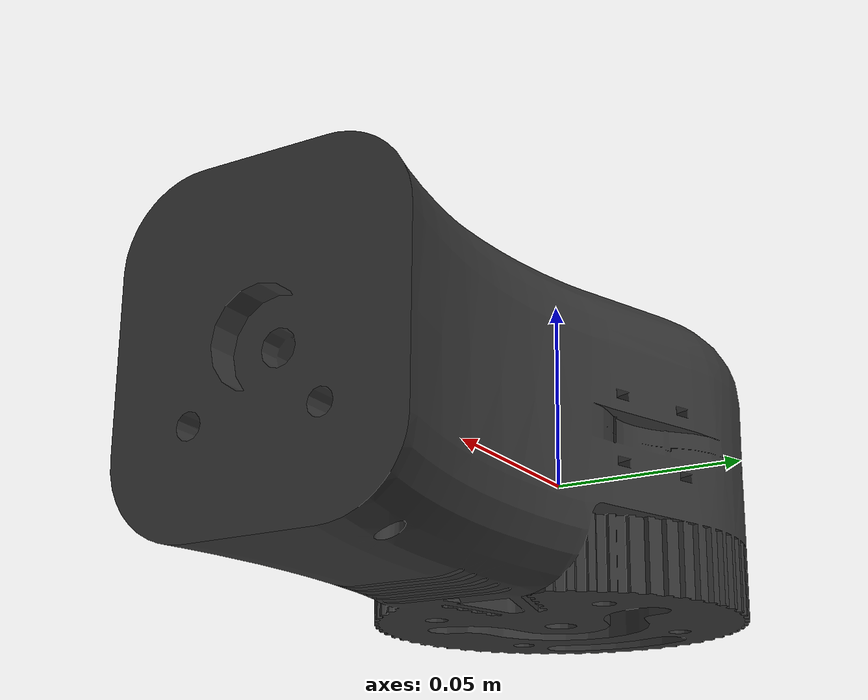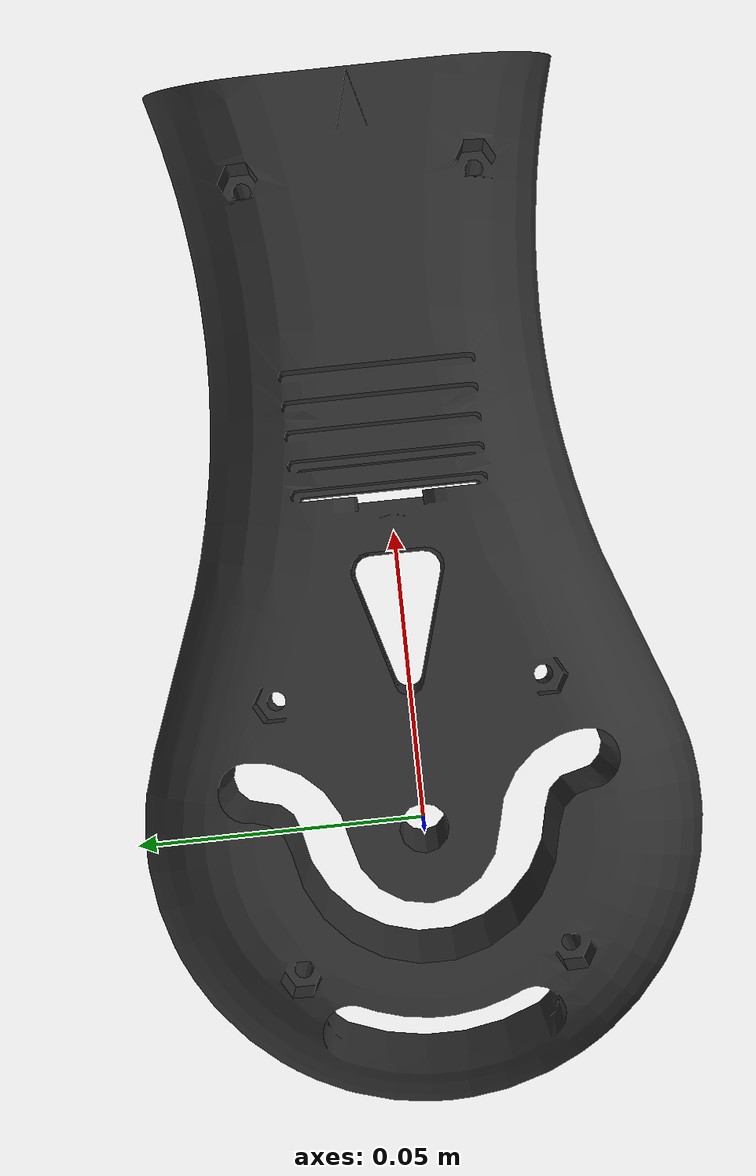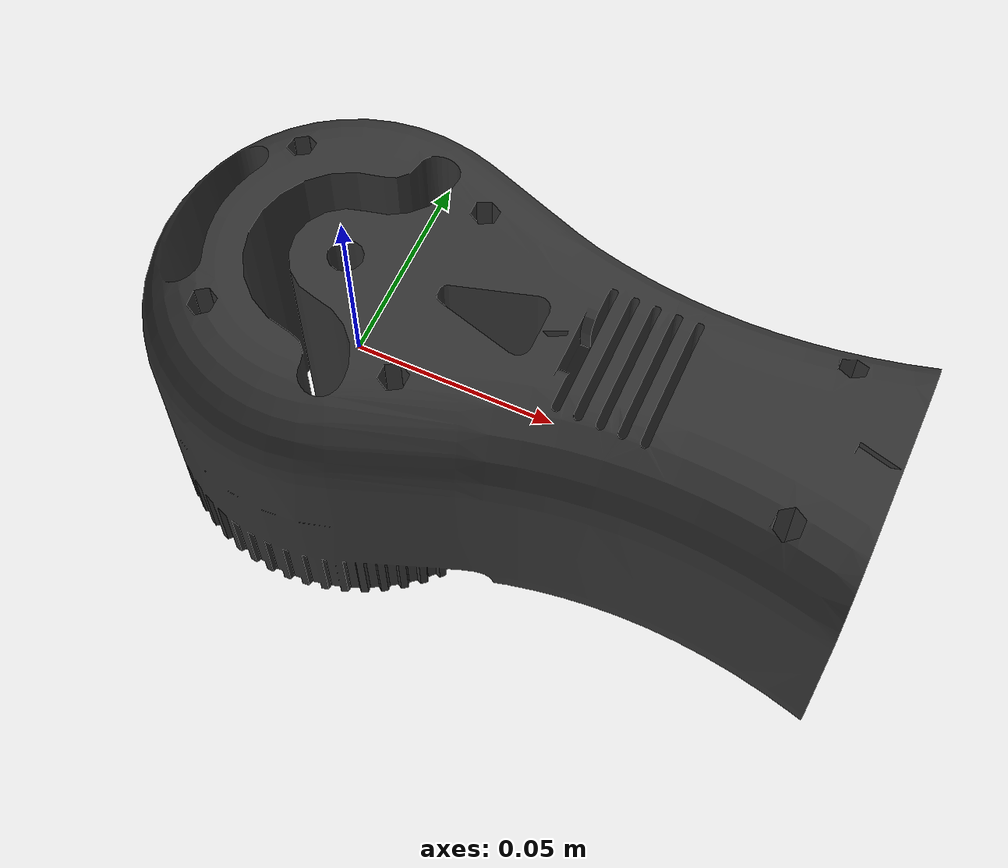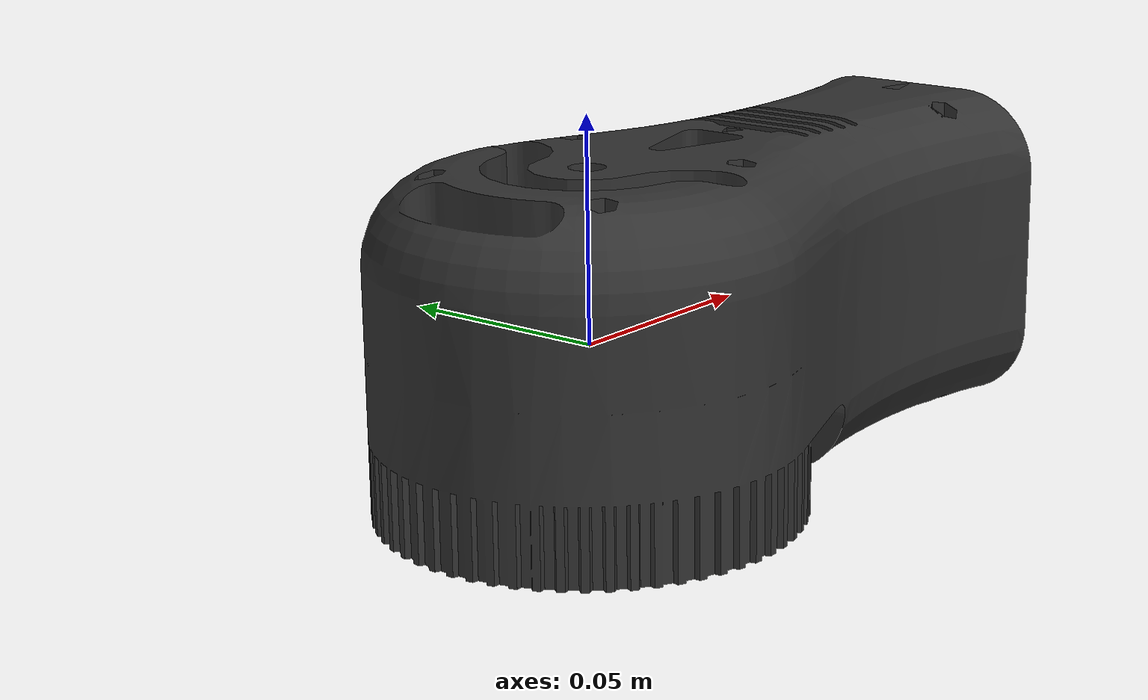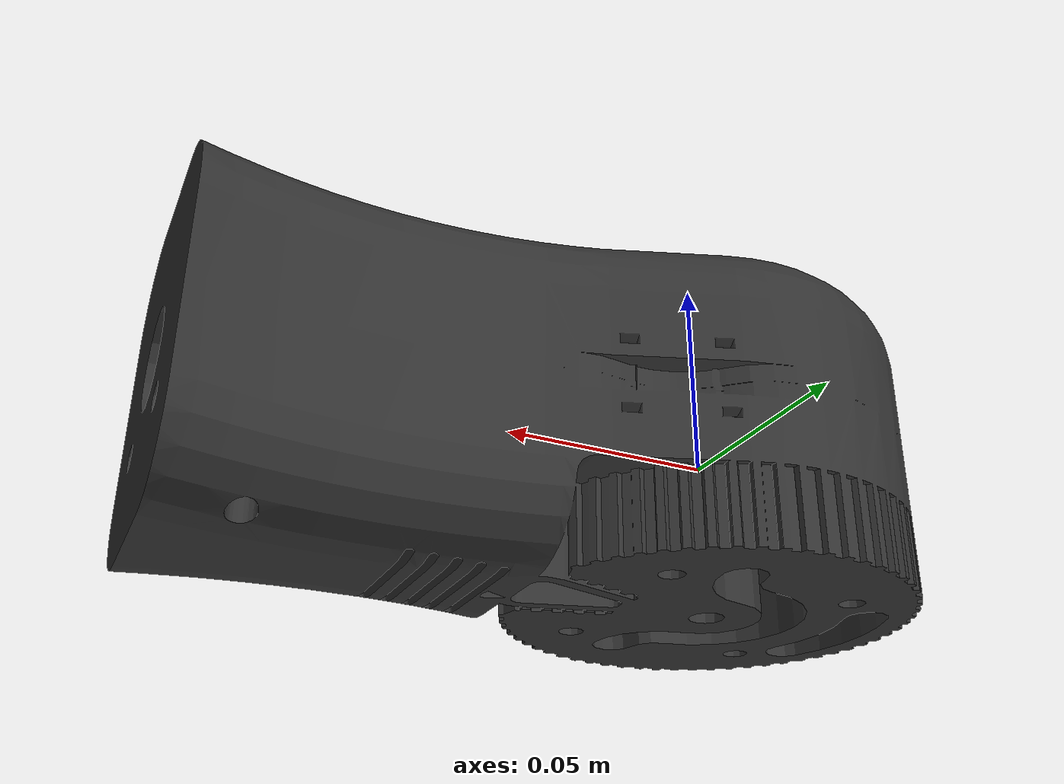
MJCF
<mujoco>
    <compiler meshdir="../meshes/Forearm" />

    <include file="materials.xml" />

    <default>

        <default class="visual">
            <geom pos="0.23058 -0.16602 0.07258" euler="-90 0 180" />
        </default>
    </default>

    <asset>
        <mesh name="Forearm_body_visual" file="Forearm_arm.STL" />
    </asset>

    <worldbody>
        <body name="Forearm">
            <geom type="mesh" mesh="Forearm_body_visual" class="visual" material="black" mass="0.1" />
        </body>
    </worldbody>
</mujoco>

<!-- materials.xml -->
<mujoco>

    <default>
        <mesh scale="0.001 0.001 0.001" />
        <geom contype="0" conaffinity="0" mass="0" />
    </default>

    <asset>
        <texture type="skybox" builtin="gradient" rgb1=".3 .5 .7" rgb2="1 1 1" width="32" height="512"/>
        <material name="blue" rgba="0.0 0.3 0.7 1" />
        <material name="black" rgba="0.2 0.2 0.2 1" />
        <material name="deep_black" rgba="0.1 0.1 0.1 1" />
        <material name="silver" rgba="0.5 0.5 0.5 1" />
        <material name="brown" rgba="1 0.7 0.5 1" />
    </asset>
</mujoco>
